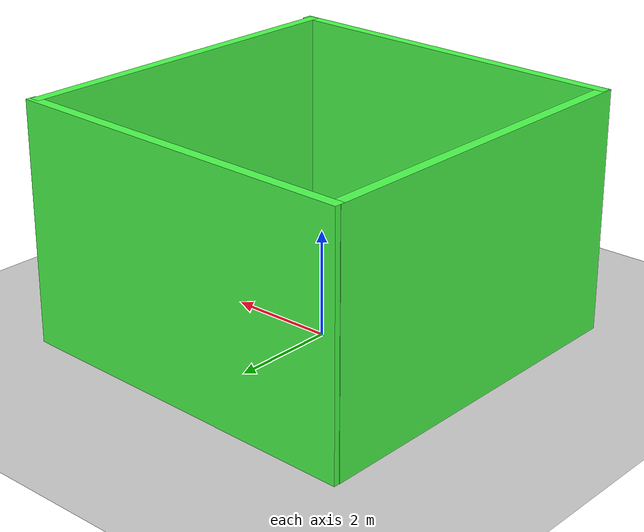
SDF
<?xml version="1.0" ?>
<sdf version="1.5">
  <world name="default">
    <scene>
        <sky>
            <sunset>20</sunset>
        </sky>
    </scene>
    <!-- A global light source -->
    <include>
      <uri>model://sun</uri>
    </include>
    <!-- A ground plane -->
    <include>
      <uri>model://ground_plane</uri>
    </include>
      <model name="wall">
        <pose>0 0 2.25 0 0 0</pose>
        <include>
          <uri>model://closed_green_wall</uri>
        </include>
      </model>
    <!-- Focus camera bit behind platforms -->
    <gui fullscreen='0'>
      <camera name='user_camera'>
        <pose>26.1679 -10.733 33.53 0.000000 0.973796 2.860191</pose>
        <view_controller>orbit</view_controller>
      </camera>
    </gui>

  </world>
</sdf>

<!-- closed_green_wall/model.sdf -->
<sdf version='1.9'>
  <model name='closed_green_wall'>
    <link name='link_0'>
      <inertial>
        <mass>1</mass>
        <inertia>
          <ixx>0.166667</ixx>
          <ixy>0</ixy>
          <ixz>0</ixz>
          <iyy>0.166667</iyy>
          <iyz>0</iyz>
          <izz>0.166667</izz>
        </inertia>
        <pose>0 0 0 0 0 0</pose>
      </inertial>
      <pose>3.37098 -0.107634 0 0 0 0</pose>
      <gravity>1</gravity>
      <self_collide>0</self_collide>
      <kinematic>0</kinematic>
      <enable_wind>0</enable_wind>
      <visual name='visual'>
        <pose>0 0 0 0 0 0</pose>
        <geometry>
          <box>
            <size>0.2 7 4.5</size>
          </box>
        </geometry>
        <material>
          <ambient>0.3 1.0 0.3 1</ambient>
          <diffuse>0.3 1.0 0.3 1</diffuse>
          <specular>0.01 0.01 0.01 1</specular>
          <emissive>0 0 0 1</emissive>
        </material>
        <transparency>0</transparency>
        <cast_shadows>1</cast_shadows>
      </visual>
      <collision name='collision'>
        <laser_retro>0</laser_retro>
        <max_contacts>10</max_contacts>
        <pose>0 0 0 0 0 0</pose>
        <geometry>
          <box>
            <size>0.2 7 4.5</size>
          </box>
        </geometry>
        <surface>
          <friction>
            <ode>
              <mu>1</mu>
              <mu2>1</mu2>
              <fdir1>0 0 0</fdir1>
              <slip1>0</slip1>
              <slip2>0</slip2>
            </ode>
            <torsional>
              <coefficient>1</coefficient>
              <patch_radius>0</patch_radius>
              <surface_radius>0</surface_radius>
              <use_patch_radius>1</use_patch_radius>
              <ode>
                <slip>0</slip>
              </ode>
            </torsional>
          </friction>
          <bounce>
            <restitution_coefficient>0</restitution_coefficient>
            <threshold>1e+06</threshold>
          </bounce>
          <contact>
            <collide_without_contact>0</collide_without_contact>
            <collide_without_contact_bitmask>1</collide_without_contact_bitmask>
            <collide_bitmask>1</collide_bitmask>
            <ode>
              <soft_cfm>0</soft_cfm>
              <soft_erp>0.2</soft_erp>
              <kp>1e+13</kp>
              <kd>1</kd>
              <max_vel>0.01</max_vel>
              <min_depth>0</min_depth>
            </ode>
            <bullet>
              <split_impulse>1</split_impulse>
              <split_impulse_penetration_threshold>-0.01</split_impulse_penetration_threshold>
              <soft_cfm>0</soft_cfm>
              <soft_erp>0.2</soft_erp>
              <kp>1e+13</kp>
              <kd>1</kd>
            </bullet>
          </contact>
        </surface>
      </collision>
    </link>
    <link name='link_0_clone'>
      <inertial>
        <mass>1</mass>
        <inertia>
          <ixx>0.166667</ixx>
          <ixy>0</ixy>
          <ixz>0</ixz>
          <iyy>0.166667</iyy>
          <iyz>0</iyz>
          <izz>0.166667</izz>
        </inertia>
        <pose>0 0 0 0 0 0</pose>
      </inertial>
      <pose>0.024232 -3.42805 0 0 0 -1.59986</pose>
      <gravity>1</gravity>
      <self_collide>0</self_collide>
      <kinematic>0</kinematic>
      <enable_wind>0</enable_wind>
      <visual name='visual'>
        <pose>0 0 0 0 0 0</pose>
        <geometry>
          <box>
            <size>0.2 7 4.5</size>
          </box>
        </geometry>
        <material>
          <ambient>0.3 1.0 0.3 1</ambient>
          <diffuse>0.3 1.0 0.3 1</diffuse>
          <specular>0.01 0.01 0.01 1</specular>
          <emissive>0 0 0 1</emissive>
        </material>
        <transparency>0</transparency>
        <cast_shadows>1</cast_shadows>
      </visual>
      <collision name='collision'>
        <laser_retro>0</laser_retro>
        <max_contacts>10</max_contacts>
        <pose>0 0 0 0 0 0</pose>
        <geometry>
          <box>
            <size>0.2 7 4.5</size>
          </box>
        </geometry>
        <surface>
          <friction>
            <ode>
              <mu>1</mu>
              <mu2>1</mu2>
              <fdir1>0 0 0</fdir1>
              <slip1>0</slip1>
              <slip2>0</slip2>
            </ode>
            <torsional>
              <coefficient>1</coefficient>
              <patch_radius>0</patch_radius>
              <surface_radius>0</surface_radius>
              <use_patch_radius>1</use_patch_radius>
              <ode>
                <slip>0</slip>
              </ode>
            </torsional>
          </friction>
          <bounce>
            <restitution_coefficient>0</restitution_coefficient>
            <threshold>1e+06</threshold>
          </bounce>
          <contact>
            <collide_without_contact>0</collide_without_contact>
            <collide_without_contact_bitmask>1</collide_without_contact_bitmask>
            <collide_bitmask>1</collide_bitmask>
            <ode>
              <soft_cfm>0</soft_cfm>
              <soft_erp>0.2</soft_erp>
              <kp>1e+13</kp>
              <kd>1</kd>
              <max_vel>0.01</max_vel>
              <min_depth>0</min_depth>
            </ode>
            <bullet>
              <split_impulse>1</split_impulse>
              <split_impulse_penetration_threshold>-0.01</split_impulse_penetration_threshold>
              <soft_cfm>0</soft_cfm>
              <soft_erp>0.2</soft_erp>
              <kp>1e+13</kp>
              <kd>1</kd>
            </bullet>
          </contact>
        </surface>
      </collision>
    </link>
    <link name='link_0_clone_0'>
      <inertial>
        <mass>1</mass>
        <inertia>
          <ixx>0.166667</ixx>
          <ixy>0</ixy>
          <ixz>0</ixz>
          <iyy>0.166667</iyy>
          <iyz>0</iyz>
          <izz>0.166667</izz>
        </inertia>
        <pose>0 0 0 0 0 0</pose>
      </inertial>
      <pose>-3.40001 0.065208 0 0 0 0</pose>
      <gravity>1</gravity>
      <self_collide>0</self_collide>
      <kinematic>0</kinematic>
      <enable_wind>0</enable_wind>
      <visual name='visual'>
        <pose>0 0 0 0 0 0</pose>
        <geometry>
          <box>
            <size>0.2 7 4.5</size>
          </box>
        </geometry>
        <material>
          <ambient>0.3 1.0 0.3 1</ambient>
          <diffuse>0.3 1.0 0.3 1</diffuse>
          <specular>0.01 0.01 0.01 1</specular>
          <emissive>0 0 0 1</emissive>
        </material>
        <transparency>0</transparency>
        <cast_shadows>1</cast_shadows>
      </visual>
      <collision name='collision'>
        <laser_retro>0</laser_retro>
        <max_contacts>10</max_contacts>
        <pose>0 0 0 0 0 0</pose>
        <geometry>
          <box>
            <size>0.2 7 4.5</size>
          </box>
        </geometry>
        <surface>
          <friction>
            <ode>
              <mu>1</mu>
              <mu2>1</mu2>
              <fdir1>0 0 0</fdir1>
              <slip1>0</slip1>
              <slip2>0</slip2>
            </ode>
            <torsional>
              <coefficient>1</coefficient>
              <patch_radius>0</patch_radius>
              <surface_radius>0</surface_radius>
              <use_patch_radius>1</use_patch_radius>
              <ode>
                <slip>0</slip>
              </ode>
            </torsional>
          </friction>
          <bounce>
            <restitution_coefficient>0</restitution_coefficient>
            <threshold>1e+06</threshold>
          </bounce>
          <contact>
            <collide_without_contact>0</collide_without_contact>
            <collide_without_contact_bitmask>1</collide_without_contact_bitmask>
            <collide_bitmask>1</collide_bitmask>
            <ode>
              <soft_cfm>0</soft_cfm>
              <soft_erp>0.2</soft_erp>
              <kp>1e+13</kp>
              <kd>1</kd>
              <max_vel>0.01</max_vel>
              <min_depth>0</min_depth>
            </ode>
            <bullet>
              <split_impulse>1</split_impulse>
              <split_impulse_penetration_threshold>-0.01</split_impulse_penetration_threshold>
              <soft_cfm>0</soft_cfm>
              <soft_erp>0.2</soft_erp>
              <kp>1e+13</kp>
              <kd>1</kd>
            </bullet>
          </contact>
        </surface>
      </collision>
    </link>
    <link name='link_0_clone_clone'>
      <inertial>
        <mass>1</mass>
        <inertia>
          <ixx>0.166667</ixx>
          <ixy>0</ixy>
          <ixz>0</ixz>
          <iyy>0.166667</iyy>
          <iyz>0</iyz>
          <izz>0.166667</izz>
        </inertia>
        <pose>0 0 0 0 0 0</pose>
      </inertial>
      <pose>0.004806 3.47046 0 0 0 -1.59986</pose>
      <gravity>1</gravity>
      <self_collide>0</self_collide>
      <kinematic>0</kinematic>
      <enable_wind>0</enable_wind>
      <visual name='visual'>
        <pose>0 0 0 0 0 0</pose>
        <geometry>
          <box>
            <size>0.2 7 4.5</size>
          </box>
        </geometry>
        <material>
          <ambient>0.3 1.0 0.3 1</ambient>
          <diffuse>0.3 1.0 0.3 1</diffuse>
          <specular>0.01 0.01 0.01 1</specular>
          <emissive>0 0 0 1</emissive>
        </material>
        <transparency>0</transparency>
        <cast_shadows>1</cast_shadows>
      </visual>
      <collision name='collision'>
        <laser_retro>0</laser_retro>
        <max_contacts>10</max_contacts>
        <pose>0 0 0 0 0 0</pose>
        <geometry>
          <box>
            <size>0.2 7 4.5</size>
          </box>
        </geometry>
        <surface>
          <friction>
            <ode>
              <mu>1</mu>
              <mu2>1</mu2>
              <fdir1>0 0 0</fdir1>
              <slip1>0</slip1>
              <slip2>0</slip2>
            </ode>
            <torsional>
              <coefficient>1</coefficient>
              <patch_radius>0</patch_radius>
              <surface_radius>0</surface_radius>
              <use_patch_radius>1</use_patch_radius>
              <ode>
                <slip>0</slip>
              </ode>
            </torsional>
          </friction>
          <bounce>
            <restitution_coefficient>0</restitution_coefficient>
            <threshold>1e+06</threshold>
          </bounce>
          <contact>
            <collide_without_contact>0</collide_without_contact>
            <collide_without_contact_bitmask>1</collide_without_contact_bitmask>
            <collide_bitmask>1</collide_bitmask>
            <ode>
              <soft_cfm>0</soft_cfm>
              <soft_erp>0.2</soft_erp>
              <kp>1e+13</kp>
              <kd>1</kd>
              <max_vel>0.01</max_vel>
              <min_depth>0</min_depth>
            </ode>
            <bullet>
              <split_impulse>1</split_impulse>
              <split_impulse_penetration_threshold>-0.01</split_impulse_penetration_threshold>
              <soft_cfm>0</soft_cfm>
              <soft_erp>0.2</soft_erp>
              <kp>1e+13</kp>
              <kd>1</kd>
            </bullet>
          </contact>
        </surface>
      </collision>
    </link>
    <static>1</static>
    <allow_auto_disable>1</allow_auto_disable>
  </model>
</sdf>
